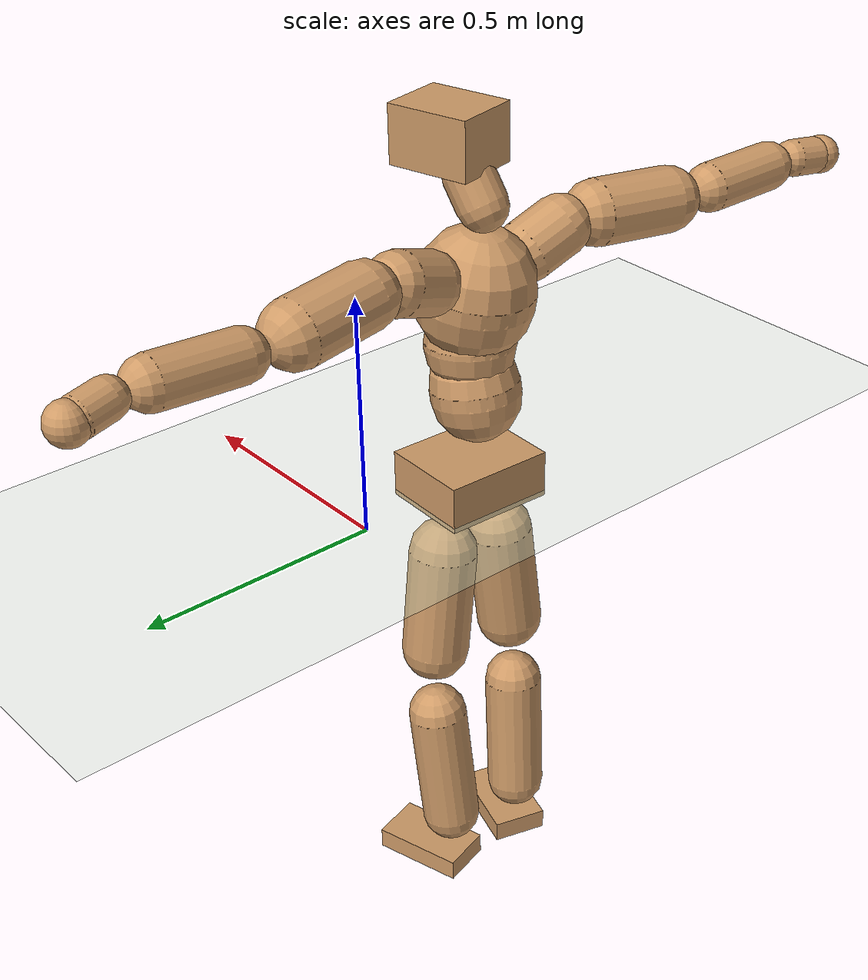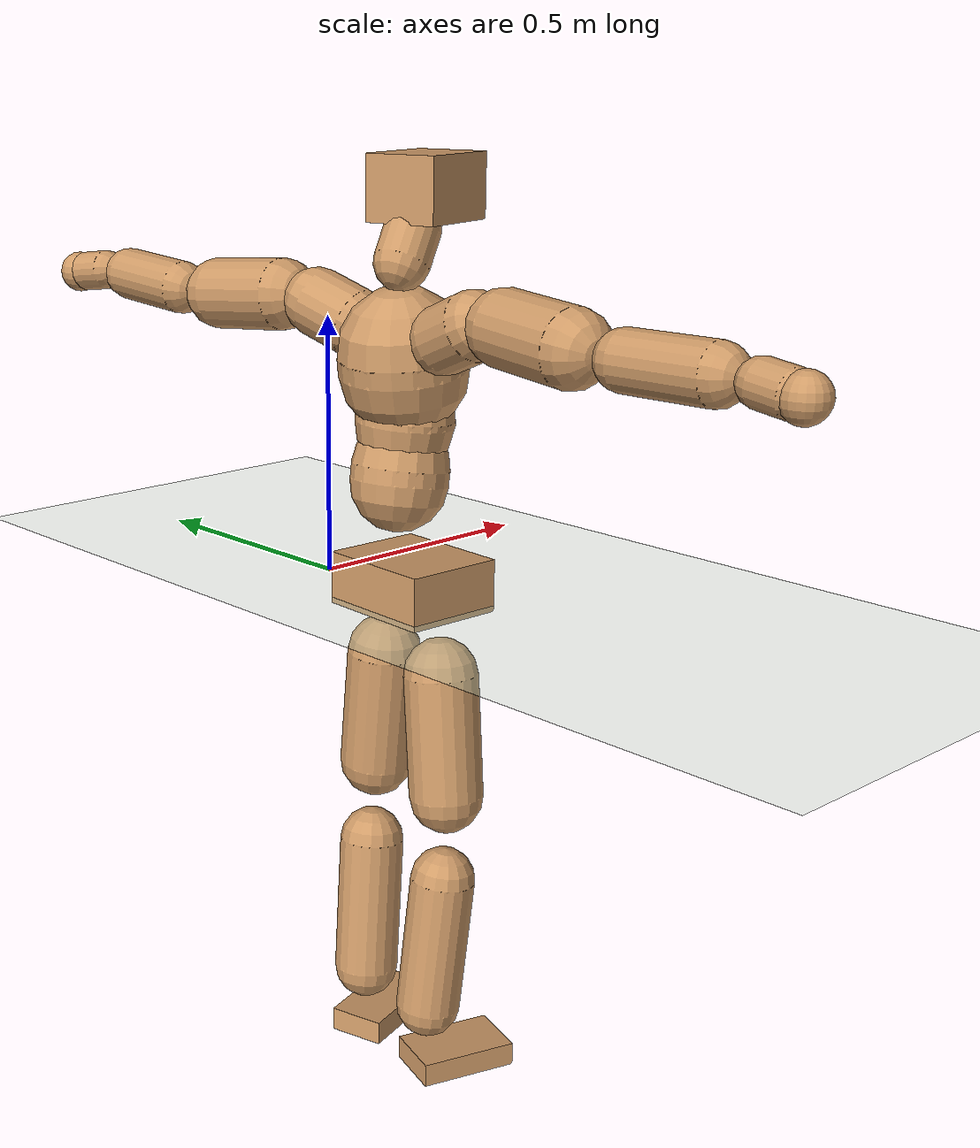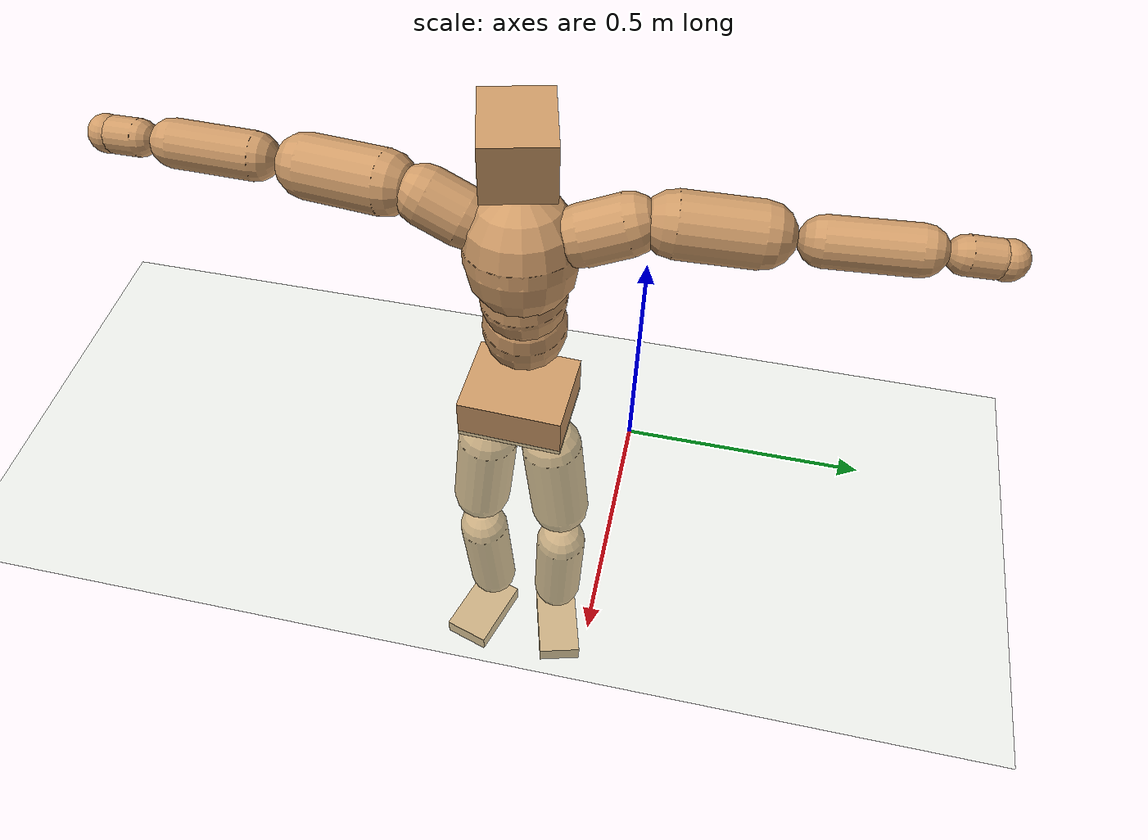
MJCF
<mujoco model="humanoid">
  <compiler coordinate="local" angle="radian"/>
  <default>
    <joint damping="0.0" armature="0.01" stiffness="0.0" limited="true"/>
    <geom conaffinity="1" condim="3" contype="7" margin="0.001" rgba="0.8 0.6 .4 1"/>
  </default>
  <asset>
    <texture type="skybox" builtin="gradient" rgb1=".4 .5 .6" rgb2="0 0 0" width="100" height="100"/>
    <texture builtin="flat" height="1278" mark="cross" markrgb="1 1 1" name="texgeom" random="0.01" rgb1="0.8 0.6 0.4" rgb2="0.8 0.6 0.4" type="cube" width="127"/>
    <texture builtin="checker" height="100" name="texplane" rgb1="0 0 0" rgb2="0.8 0.8 0.8" type="2d" width="100"/>
    <material name="MatPlane" reflectance="0.5" shininess="1" specular="1" texrepeat="60 60" texture="texplane"/>
    <material name="geom" texture="texgeom" texuniform="true"/>
  </asset>
  <worldbody>
    <light cutoff="100" diffuse="1 1 1" dir="-0 0 -1.3" directional="true" exponent="1" pos="0 0 1.3" specular=".1 .1 .1"/>
    <geom conaffinity="1" condim="3" name="floor" pos="0 0 0" rgba="0.8 0.9 0.8 1" size="100 100 .2" type="plane" material="MatPlane"/>
    <body name="Pelvis" pos="-0.0029 -0.2544 0.0449">
      <freejoint name="Pelvis"/>
      <geom type="box" contype="1" conaffinity="1" density="500" pos="-0.0127 0.0005 -0.0083" size="0.0978 0.1171 0.0501" quat="0.9998 0.0000 0.0000 -0.0190" name="Pelvis"/>
      <body name="L_Hip" pos="-0.0144 0.0673 -0.0856">
        <joint name="L_Hip_x" type="hinge" pos="0 0 0" axis="1 0 0" stiffness="800" damping="80" armature="0.02" range="-180.0000 180.0000"/>
        <joint name="L_Hip_y" type="hinge" pos="0 0 0" axis="0 1 0" stiffness="800" damping="80" armature="0.02" range="-180.0000 180.0000"/>
        <joint name="L_Hip_z" type="hinge" pos="0 0 0" axis="0 0 1" stiffness="800" damping="80" armature="0.02" range="-180.0000 180.0000"/>
        <geom type="capsule" contype="1" conaffinity="1" density="500" fromto="0.0008 0.0084 -0.0782 0.0031 0.0335 -0.3127" size="0.0709" name="L_Hip"/>
        <body name="L_Knee" pos="0.0039 0.0419 -0.3908">
          <joint name="L_Knee_x" type="hinge" pos="0 0 0" axis="1 0 0" stiffness="800" damping="80" armature="0.02" range="-180.0000 180.0000"/>
          <joint name="L_Knee_y" type="hinge" pos="0 0 0" axis="0 1 0" stiffness="800" damping="80" armature="0.02" range="-180.0000 180.0000"/>
          <joint name="L_Knee_z" type="hinge" pos="0 0 0" axis="0 0 1" stiffness="800" damping="80" armature="0.02" range="-180.0000 180.0000"/>
          <geom type="capsule" contype="1" conaffinity="1" density="500" fromto="-0.0085 -0.0037 -0.0912 -0.0339 -0.0146 -0.3646" size="0.0628" name="L_Knee"/>
          <body name="L_Ankle" pos="-0.0424 -0.0183 -0.4558">
            <joint name="L_Ankle_x" type="hinge" pos="0 0 0" axis="1 0 0" stiffness="800" damping="80" armature="0.02" range="-180.0000 180.0000"/>
            <joint name="L_Ankle_y" type="hinge" pos="0 0 0" axis="0 1 0" stiffness="800" damping="80" armature="0.02" range="-180.0000 180.0000"/>
            <joint name="L_Ankle_z" type="hinge" pos="0 0 0" axis="0 0 1" stiffness="800" damping="80" armature="0.02" range="-180.0000 180.0000"/>
            <geom type="box" contype="1" conaffinity="1" density="500" pos="0.0664 0.0182 -0.0320" size="0.0998 0.0551 0.0237" quat="0.9911 0.0000 0.0000 0.1334" name="L_Ankle"/>
            <body name="L_Toe" pos="0.1328 0.0364 -0.0639">
              <joint name="L_Toe_x" type="hinge" pos="0 0 0" axis="1 0 0" stiffness="500" damping="50" armature="0.02" range="-180.0000 180.0000"/>
              <joint name="L_Toe_y" type="hinge" pos="0 0 0" axis="0 1 0" stiffness="500" damping="50" armature="0.02" range="-180.0000 180.0000"/>
              <joint name="L_Toe_z" type="hinge" pos="0 0 0" axis="0 0 1" stiffness="500" damping="50" armature="0.02" range="-180.0000 180.0000"/>
              <geom type="box" contype="1" conaffinity="1" density="500" pos="0.0000 0.0000 0.0308" size="0.0012 0.0027 0.0011" quat="0.9904 0.0000 0.0000 0.1384" name="L_Toe"/>
            </body>
          </body>
        </body>
      </body>
      <body name="R_Hip" pos="-0.0099 -0.0693 -0.0932">
        <joint name="R_Hip_x" type="hinge" pos="0 0 0" axis="1 0 0" stiffness="800" damping="80" armature="0.02" range="-180.0000 180.0000"/>
        <joint name="R_Hip_y" type="hinge" pos="0 0 0" axis="0 1 0" stiffness="800" damping="80" armature="0.02" range="-180.0000 180.0000"/>
        <joint name="R_Hip_z" type="hinge" pos="0 0 0" axis="0 0 1" stiffness="800" damping="80" armature="0.02" range="-180.0000 180.0000"/>
        <geom type="capsule" contype="1" conaffinity="1" density="500" fromto="-0.0019 -0.0082 -0.0789 -0.0077 -0.0329 -0.3156" size="0.0704" name="R_Hip"/>
        <body name="R_Knee" pos="-0.0096 -0.0412 -0.3945">
          <joint name="R_Knee_x" type="hinge" pos="0 0 0" axis="1 0 0" stiffness="800" damping="80" armature="0.02" range="-180.0000 180.0000"/>
          <joint name="R_Knee_y" type="hinge" pos="0 0 0" axis="0 1 0" stiffness="800" damping="80" armature="0.02" range="-180.0000 180.0000"/>
          <joint name="R_Knee_z" type="hinge" pos="0 0 0" axis="0 0 1" stiffness="800" damping="80" armature="0.02" range="-180.0000 180.0000"/>
          <geom type="capsule" contype="1" conaffinity="1" density="500" fromto="-0.0077 0.0043 -0.0899 -0.0307 0.0172 -0.3598" size="0.0623" name="R_Knee"/>
          <body name="R_Ankle" pos="-0.0384 0.0215 -0.4497">
            <joint name="R_Ankle_x" type="hinge" pos="0 0 0" axis="1 0 0" stiffness="800" damping="80" armature="0.02" range="-180.0000 180.0000"/>
            <joint name="R_Ankle_y" type="hinge" pos="0 0 0" axis="0 1 0" stiffness="800" damping="80" armature="0.02" range="-180.0000 180.0000"/>
            <joint name="R_Ankle_z" type="hinge" pos="0 0 0" axis="0 0 1" stiffness="800" damping="80" armature="0.02" range="-180.0000 180.0000"/>
            <geom type="box" contype="1" conaffinity="1" density="500" pos="0.0700 -0.0216 -0.0331" size="0.0969 0.059 0.0232" quat="0.9888 0.0000 0.0000 -0.1495" name="R_Ankle"/>
            <body name="R_Toe" pos="0.1399 -0.0433 -0.0663">
              <joint name="R_Toe_x" type="hinge" pos="0 0 0" axis="1 0 0" stiffness="500" damping="50" armature="0.02" range="-180.0000 180.0000"/>
              <joint name="R_Toe_y" type="hinge" pos="0 0 0" axis="0 1 0" stiffness="500" damping="50" armature="0.02" range="-180.0000 180.0000"/>
              <joint name="R_Toe_z" type="hinge" pos="0 0 0" axis="0 0 1" stiffness="500" damping="50" armature="0.02" range="-180.0000 180.0000"/>
              <geom type="box" contype="1" conaffinity="1" density="500" pos="0.0000 0.0000 0.0326" size="0.0013 0.0028 0.0011" quat="0.9900 0.0000 0.0000 -0.1411" name="R_Toe"/>
            </body>
          </body>
        </body>
      </body>
      <body name="Torso" pos="-0.0518 0.0049 0.1289">
        <joint name="Torso_x" type="hinge" pos="0 0 0" axis="1 0 0" stiffness="1000" damping="100" armature="0.02" range="-180.0000 180.0000"/>
        <joint name="Torso_y" type="hinge" pos="0 0 0" axis="0 1 0" stiffness="1000" damping="100" armature="0.02" range="-180.0000 180.0000"/>
        <joint name="Torso_z" type="hinge" pos="0 0 0" axis="0 0 1" stiffness="1000" damping="100" armature="0.02" range="-180.0000 180.0000"/>
        <geom type="capsule" contype="1" conaffinity="1" density="500" fromto="0.0135 0.0024 0.0833 0.0090 0.0016 0.0555" size="0.0909" name="Torso"/>
        <body name="Spine" pos="0.0224 0.004 0.1388">
          <joint name="Spine_x" type="hinge" pos="0 0 0" axis="1 0 0" stiffness="1000" damping="100" armature="0.02" range="-180.0000 180.0000"/>
          <joint name="Spine_y" type="hinge" pos="0 0 0" axis="0 1 0" stiffness="1000" damping="100" armature="0.02" range="-180.0000 180.0000"/>
          <joint name="Spine_z" type="hinge" pos="0 0 0" axis="0 0 1" stiffness="1000" damping="100" armature="0.02" range="-180.0000 180.0000"/>
          <geom type="capsule" contype="1" conaffinity="1" density="500" fromto="0.0027 -0.0015 0.0345 0.0018 -0.0010 0.0230" size="0.0915" name="Spine"/>
          <body name="Chest" pos="0.0045 -0.0025 0.0576">
            <joint name="Chest_x" type="hinge" pos="0 0 0" axis="1 0 0" stiffness="1000" damping="100" armature="0.02" range="-180.0000 180.0000"/>
            <joint name="Chest_y" type="hinge" pos="0 0 0" axis="0 1 0" stiffness="1000" damping="100" armature="0.02" range="-180.0000 180.0000"/>
            <joint name="Chest_z" type="hinge" pos="0 0 0" axis="0 0 1" stiffness="1000" damping="100" armature="0.02" range="-180.0000 180.0000"/>
            <geom type="capsule" contype="1" conaffinity="1" density="500" fromto="-0.0154 -0.0051 0.0970 -0.0103 -0.0034 0.0646" size="0.1185" name="Chest"/>
            <body name="Neck" pos="-0.0369 -0.0149 0.2358">
              <joint name="Neck_x" type="hinge" pos="0 0 0" axis="1 0 0" stiffness="500" damping="50" armature="0.02" range="-180.0000 180.0000"/>
              <joint name="Neck_y" type="hinge" pos="0 0 0" axis="0 1 0" stiffness="500" damping="50" armature="0.02" range="-180.0000 180.0000"/>
              <joint name="Neck_z" type="hinge" pos="0 0 0" axis="0 0 1" stiffness="500" damping="50" armature="0.02" range="-180.0000 180.0000"/>
              <geom type="capsule" contype="1" conaffinity="1" density="500" fromto="0.0110 0.0024 0.0189 0.0442 0.0095 0.0756" size="0.0507" name="Neck"/>
              <body name="Head" pos="0.0552 0.0119 0.0945">
                <joint name="Head_x" type="hinge" pos="0 0 0" axis="1 0 0" stiffness="500" damping="50" armature="0.02" range="-180.0000 180.0000"/>
                <joint name="Head_y" type="hinge" pos="0 0 0" axis="0 1 0" stiffness="500" damping="50" armature="0.02" range="-180.0000 180.0000"/>
                <joint name="Head_z" type="hinge" pos="0 0 0" axis="0 0 1" stiffness="500" damping="50" armature="0.02" range="-180.0000 180.0000"/>
                <geom type="box" contype="1" conaffinity="1" density="500" pos="0.0286 0.0070 0.0482" size="0.0867 0.0696 0.0584" quat="0.9929 0.0000 0.0000 0.1192" name="Head"/>
              </body>
            </body>
            <body name="L_Thorax" pos="-0.0161 0.0846 0.1259">
              <joint name="L_Thorax_x" type="hinge" pos="0 0 0" axis="1 0 0" stiffness="500" damping="50" armature="0.02" range="-180.0000 180.0000"/>
              <joint name="L_Thorax_y" type="hinge" pos="0 0 0" axis="0 1 0" stiffness="500" damping="50" armature="0.02" range="-180.0000 180.0000"/>
              <joint name="L_Thorax_z" type="hinge" pos="0 0 0" axis="0 0 1" stiffness="500" damping="50" armature="0.02" range="-180.0000 180.0000"/>
              <geom type="capsule" contype="1" conaffinity="1" density="500" fromto="-0.0055 0.0289 0.0102 -0.0218 0.1157 0.0406" size="0.0632" name="L_Thorax"/>
              <body name="L_Shoulder" pos="-0.0273 0.1446 0.0508">
                <joint name="L_Shoulder_x" type="hinge" pos="0 0 0" axis="1 0 0" stiffness="500" damping="50" armature="0.02" range="-720.0000 720.0000"/>
                <joint name="L_Shoulder_y" type="hinge" pos="0 0 0" axis="0 1 0" stiffness="500" damping="50" armature="0.02" range="-720.0000 720.0000"/>
                <joint name="L_Shoulder_z" type="hinge" pos="0 0 0" axis="0 0 1" stiffness="500" damping="50" armature="0.02" range="-720.0000 720.0000"/>
                <geom type="capsule" contype="1" conaffinity="1" density="500" fromto="-0.0066 0.0551 -0.0040 -0.0264 0.2203 -0.0162" size="0.0669" name="L_Shoulder"/>
                <body name="L_Elbow" pos="-0.033 0.2754 -0.0202">
                  <joint name="L_Elbow_x" type="hinge" pos="0 0 0" axis="1 0 0" stiffness="500" damping="50" armature="0.02" range="-720.0000 720.0000"/>
                  <joint name="L_Elbow_y" type="hinge" pos="0 0 0" axis="0 1 0" stiffness="500" damping="50" armature="0.02" range="-720.0000 720.0000"/>
                  <joint name="L_Elbow_z" type="hinge" pos="0 0 0" axis="0 0 1" stiffness="500" damping="50" armature="0.02" range="-720.0000 720.0000"/>
                  <geom type="capsule" contype="1" conaffinity="1" density="500" fromto="-0.0003 0.0588 0.0037 -0.0014 0.2353 0.0147" size="0.0507" name="L_Elbow"/>
                  <body name="L_Wrist" pos="-0.0017 0.2941 0.0183">
                    <joint name="L_Wrist_x" type="hinge" pos="0 0 0" axis="1 0 0" stiffness="300" damping="30" armature="0.02" range="-180.0000 180.0000"/>
                    <joint name="L_Wrist_y" type="hinge" pos="0 0 0" axis="0 1 0" stiffness="300" damping="30" armature="0.02" range="-180.0000 180.0000"/>
                    <joint name="L_Wrist_z" type="hinge" pos="0 0 0" axis="0 0 1" stiffness="300" damping="30" armature="0.02" range="-180.0000 180.0000"/>
                    <geom type="capsule" contype="1" conaffinity="1" density="500" fromto="-0.0035 0.0196 -0.0025 -0.0140 0.0786 -0.0099" size="0.0389" name="L_Wrist"/>
                    <body name="L_Hand" pos="-0.0175 0.0982 -0.0124">
                      <joint name="L_Hand_x" type="hinge" pos="0 0 0" axis="1 0 0" stiffness="300" damping="30" armature="0.02" range="-180.0000 180.0000"/>
                      <joint name="L_Hand_y" type="hinge" pos="0 0 0" axis="0 1 0" stiffness="300" damping="30" armature="0.02" range="-180.0000 180.0000"/>
                      <joint name="L_Hand_z" type="hinge" pos="0 0 0" axis="0 0 1" stiffness="300" damping="30" armature="0.02" range="-180.0000 180.0000"/>
                      <geom type="sphere" contype="1" conaffinity="1" density="500" size="0.0404" pos="0.0000 0.0000 0.0000" name="L_Hand"/>
                    </body>
                  </body>
                </body>
              </body>
            </body>
            <body name="R_Thorax" pos="-0.0239 -0.0951 0.1232">
              <joint name="R_Thorax_x" type="hinge" pos="0 0 0" axis="1 0 0" stiffness="500" damping="50" armature="0.02" range="-180.0000 180.0000"/>
              <joint name="R_Thorax_y" type="hinge" pos="0 0 0" axis="0 1 0" stiffness="500" damping="50" armature="0.02" range="-180.0000 180.0000"/>
              <joint name="R_Thorax_z" type="hinge" pos="0 0 0" axis="0 0 1" stiffness="500" damping="50" armature="0.02" range="-180.0000 180.0000"/>
              <geom type="capsule" contype="1" conaffinity="1" density="500" fromto="-0.0028 -0.0264 0.0109 -0.0113 -0.1056 0.0435" size="0.0625" name="R_Thorax"/>
              <body name="R_Shoulder" pos="-0.0142 -0.1319 0.0543">
                <joint name="R_Shoulder_x" type="hinge" pos="0 0 0" axis="1 0 0" stiffness="500" damping="50" armature="0.02" range="-720.0000 720.0000"/>
                <joint name="R_Shoulder_y" type="hinge" pos="0 0 0" axis="0 1 0" stiffness="500" damping="50" armature="0.02" range="-720.0000 720.0000"/>
                <joint name="R_Shoulder_z" type="hinge" pos="0 0 0" axis="0 0 1" stiffness="500" damping="50" armature="0.02" range="-720.0000 720.0000"/>
                <geom type="capsule" contype="1" conaffinity="1" density="500" fromto="-0.0090 -0.0569 -0.0032 -0.0359 -0.2275 -0.0127" size="0.0672" name="R_Shoulder"/>
                <body name="R_Elbow" pos="-0.0449 -0.2844 -0.0158">
                  <joint name="R_Elbow_x" type="hinge" pos="0 0 0" axis="1 0 0" stiffness="500" damping="50" armature="0.02" range="-720.0000 720.0000"/>
                  <joint name="R_Elbow_y" type="hinge" pos="0 0 0" axis="0 1 0" stiffness="500" damping="50" armature="0.02" range="-720.0000 720.0000"/>
                  <joint name="R_Elbow_z" type="hinge" pos="0 0 0" axis="0 0 1" stiffness="500" damping="50" armature="0.02" range="-720.0000 720.0000"/>
                  <geom type="capsule" contype="1" conaffinity="1" density="500" fromto="-0.0006 -0.0582 0.0007 -0.0024 -0.2328 0.0030" size="0.0508" name="R_Elbow"/>
                  <body name="R_Wrist" pos="-0.0029 -0.291 0.0037">
                    <joint name="R_Wrist_x" type="hinge" pos="0 0 0" axis="1 0 0" stiffness="300" damping="30" armature="0.02" range="-180.0000 180.0000"/>
                    <joint name="R_Wrist_y" type="hinge" pos="0 0 0" axis="0 1 0" stiffness="300" damping="30" armature="0.02" range="-180.0000 180.0000"/>
                    <joint name="R_Wrist_z" type="hinge" pos="0 0 0" axis="0 0 1" stiffness="300" damping="30" armature="0.02" range="-180.0000 180.0000"/>
                    <geom type="capsule" contype="1" conaffinity="1" density="500" fromto="-0.0023 -0.0198 -0.0020 -0.0090 -0.0793 -0.0082" size="0.0392" name="R_Wrist"/>
                    <body name="R_Hand" pos="-0.0113 -0.0992 -0.0102">
                      <joint name="R_Hand_x" type="hinge" pos="0 0 0" axis="1 0 0" stiffness="300" damping="30" armature="0.02" range="-180.0000 180.0000"/>
                      <joint name="R_Hand_y" type="hinge" pos="0 0 0" axis="0 1 0" stiffness="300" damping="30" armature="0.02" range="-180.0000 180.0000"/>
                      <joint name="R_Hand_z" type="hinge" pos="0 0 0" axis="0 0 1" stiffness="300" damping="30" armature="0.02" range="-180.0000 180.0000"/>
                      <geom type="sphere" contype="1" conaffinity="1" density="500" size="0.0404" pos="0.0000 0.0000 0.0000" name="R_Hand"/>
                    </body>
                  </body>
                </body>
              </body>
            </body>
          </body>
        </body>
      </body>
    </body>
  </worldbody>
  <actuator>
    <motor name="L_Hip_x" joint="L_Hip_x" gear="500"/>
    <motor name="L_Hip_y" joint="L_Hip_y" gear="500"/>
    <motor name="L_Hip_z" joint="L_Hip_z" gear="500"/>
    <motor name="L_Knee_x" joint="L_Knee_x" gear="500"/>
    <motor name="L_Knee_y" joint="L_Knee_y" gear="500"/>
    <motor name="L_Knee_z" joint="L_Knee_z" gear="500"/>
    <motor name="L_Ankle_x" joint="L_Ankle_x" gear="500"/>
    <motor name="L_Ankle_y" joint="L_Ankle_y" gear="500"/>
    <motor name="L_Ankle_z" joint="L_Ankle_z" gear="500"/>
    <motor name="L_Toe_x" joint="L_Toe_x" gear="500"/>
    <motor name="L_Toe_y" joint="L_Toe_y" gear="500"/>
    <motor name="L_Toe_z" joint="L_Toe_z" gear="500"/>
    <motor name="R_Hip_x" joint="R_Hip_x" gear="500"/>
    <motor name="R_Hip_y" joint="R_Hip_y" gear="500"/>
    <motor name="R_Hip_z" joint="R_Hip_z" gear="500"/>
    <motor name="R_Knee_x" joint="R_Knee_x" gear="500"/>
    <motor name="R_Knee_y" joint="R_Knee_y" gear="500"/>
    <motor name="R_Knee_z" joint="R_Knee_z" gear="500"/>
    <motor name="R_Ankle_x" joint="R_Ankle_x" gear="500"/>
    <motor name="R_Ankle_y" joint="R_Ankle_y" gear="500"/>
    <motor name="R_Ankle_z" joint="R_Ankle_z" gear="500"/>
    <motor name="R_Toe_x" joint="R_Toe_x" gear="500"/>
    <motor name="R_Toe_y" joint="R_Toe_y" gear="500"/>
    <motor name="R_Toe_z" joint="R_Toe_z" gear="500"/>
    <motor name="Torso_x" joint="Torso_x" gear="500"/>
    <motor name="Torso_y" joint="Torso_y" gear="500"/>
    <motor name="Torso_z" joint="Torso_z" gear="500"/>
    <motor name="Spine_x" joint="Spine_x" gear="500"/>
    <motor name="Spine_y" joint="Spine_y" gear="500"/>
    <motor name="Spine_z" joint="Spine_z" gear="500"/>
    <motor name="Chest_x" joint="Chest_x" gear="500"/>
    <motor name="Chest_y" joint="Chest_y" gear="500"/>
    <motor name="Chest_z" joint="Chest_z" gear="500"/>
    <motor name="Neck_x" joint="Neck_x" gear="500"/>
    <motor name="Neck_y" joint="Neck_y" gear="500"/>
    <motor name="Neck_z" joint="Neck_z" gear="500"/>
    <motor name="Head_x" joint="Head_x" gear="500"/>
    <motor name="Head_y" joint="Head_y" gear="500"/>
    <motor name="Head_z" joint="Head_z" gear="500"/>
    <motor name="L_Thorax_x" joint="L_Thorax_x" gear="500"/>
    <motor name="L_Thorax_y" joint="L_Thorax_y" gear="500"/>
    <motor name="L_Thorax_z" joint="L_Thorax_z" gear="500"/>
    <motor name="L_Shoulder_x" joint="L_Shoulder_x" gear="500"/>
    <motor name="L_Shoulder_y" joint="L_Shoulder_y" gear="500"/>
    <motor name="L_Shoulder_z" joint="L_Shoulder_z" gear="500"/>
    <motor name="L_Elbow_x" joint="L_Elbow_x" gear="500"/>
    <motor name="L_Elbow_y" joint="L_Elbow_y" gear="500"/>
    <motor name="L_Elbow_z" joint="L_Elbow_z" gear="500"/>
    <motor name="L_Wrist_x" joint="L_Wrist_x" gear="500"/>
    <motor name="L_Wrist_y" joint="L_Wrist_y" gear="500"/>
    <motor name="L_Wrist_z" joint="L_Wrist_z" gear="500"/>
    <motor name="L_Hand_x" joint="L_Hand_x" gear="500"/>
    <motor name="L_Hand_y" joint="L_Hand_y" gear="500"/>
    <motor name="L_Hand_z" joint="L_Hand_z" gear="500"/>
    <motor name="R_Thorax_x" joint="R_Thorax_x" gear="500"/>
    <motor name="R_Thorax_y" joint="R_Thorax_y" gear="500"/>
    <motor name="R_Thorax_z" joint="R_Thorax_z" gear="500"/>
    <motor name="R_Shoulder_x" joint="R_Shoulder_x" gear="500"/>
    <motor name="R_Shoulder_y" joint="R_Shoulder_y" gear="500"/>
    <motor name="R_Shoulder_z" joint="R_Shoulder_z" gear="500"/>
    <motor name="R_Elbow_x" joint="R_Elbow_x" gear="500"/>
    <motor name="R_Elbow_y" joint="R_Elbow_y" gear="500"/>
    <motor name="R_Elbow_z" joint="R_Elbow_z" gear="500"/>
    <motor name="R_Wrist_x" joint="R_Wrist_x" gear="500"/>
    <motor name="R_Wrist_y" joint="R_Wrist_y" gear="500"/>
    <motor name="R_Wrist_z" joint="R_Wrist_z" gear="500"/>
    <motor name="R_Hand_x" joint="R_Hand_x" gear="500"/>
    <motor name="R_Hand_y" joint="R_Hand_y" gear="500"/>
    <motor name="R_Hand_z" joint="R_Hand_z" gear="500"/>
  </actuator>
  <contact>
    <exclude body1="Torso" body2="Chest"/>
    <exclude body1="Head" body2="Chest"/>
    <exclude body1="R_Knee" body2="R_Toe"/>
    <exclude body1="R_Knee" body2="L_Ankle"/>
    <exclude body1="R_Knee" body2="L_Toe"/>
    <exclude body1="L_Knee" body2="L_Toe"/>
    <exclude body1="L_Knee" body2="R_Ankle"/>
    <exclude body1="L_Knee" body2="R_Toe"/>
    <exclude body1="L_Shoulder" body2="Chest"/>
    <exclude body1="R_Shoulder" body2="Chest"/>
  </contact>
  <sensor/>
  <size njmax="700" nconmax="700"/>
</mujoco>
